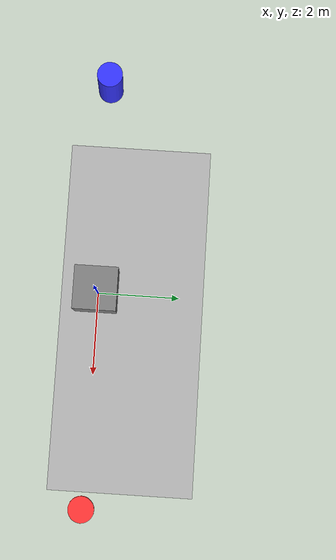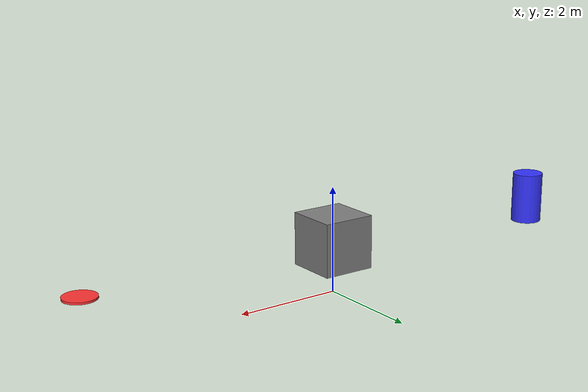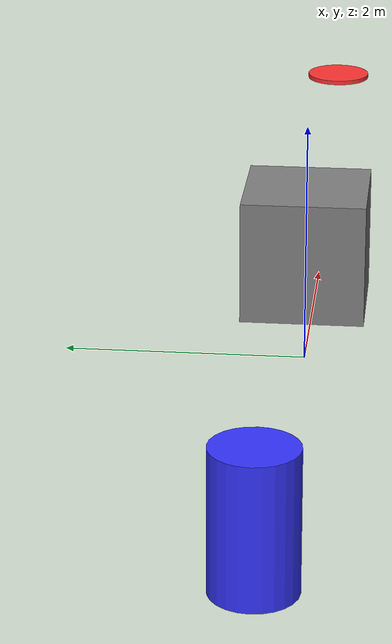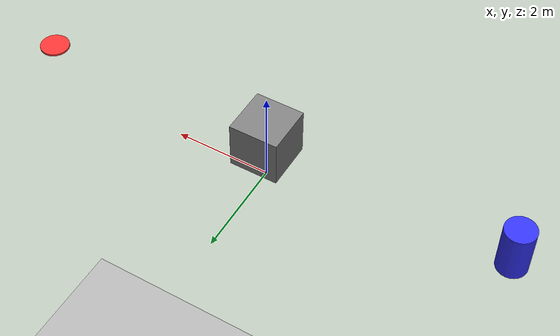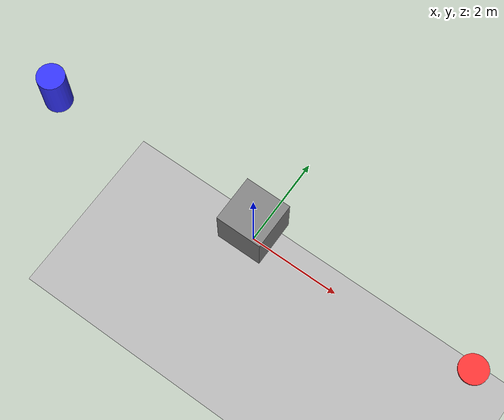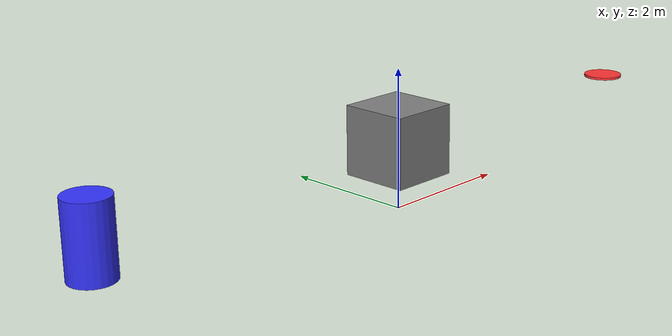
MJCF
<mujoco>
  <option gravity="0 0 -9.81"/>
  <worldbody>
    <!-- Solid Cylinder (Blue) - same mass and radius as ring -->
    <body name="object_1" pos="-5 0 1">
      <geom type="cylinder" size="0.3 0.5" mass="1" rgba="0.2 0.2 1 1"/>
      <joint name="object_1_joint" type="free"/>
    </body>
    <!-- Ring (Red, approximated as thin cylinder) - same mass and radius as cylinder -->
    <body name="object_2" pos="5 0 1">
      <geom type="cylinder" size="0.3 0.02" mass="1" rgba="1 0.2 0.2 1"/>
      <joint name="object_2_joint" type="free"/>
    </body>
    <!-- Support -->
    <body name="object_3" pos="0 0 1">
      <geom type="box" size="0.5 0.5 0.5" rgba="0.5 0.5 0.5 1"/>
    </body>
    <!-- Ground Surface -->
    <body name="object_4" pos="-10 0 -10">
      <geom type="plane" size="30 30 0.1" rgba="0.7 0.7 0.7 1" friction="1 1 1"/>
    </body>
  </worldbody>
</mujoco>
